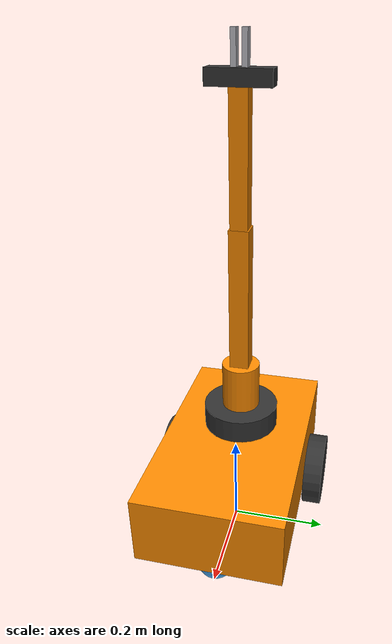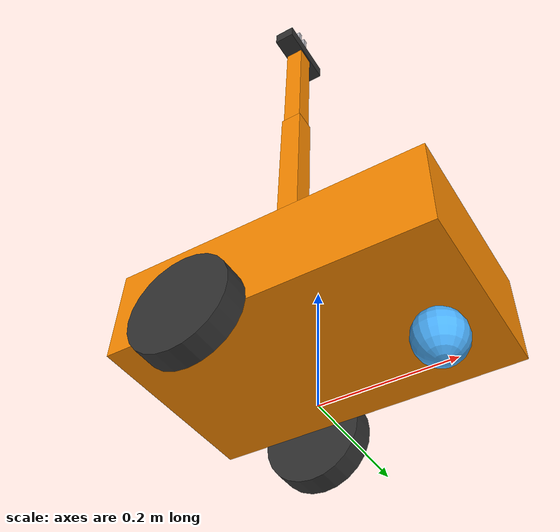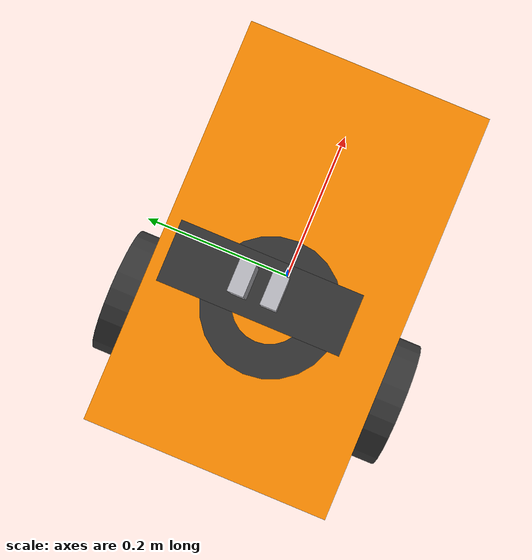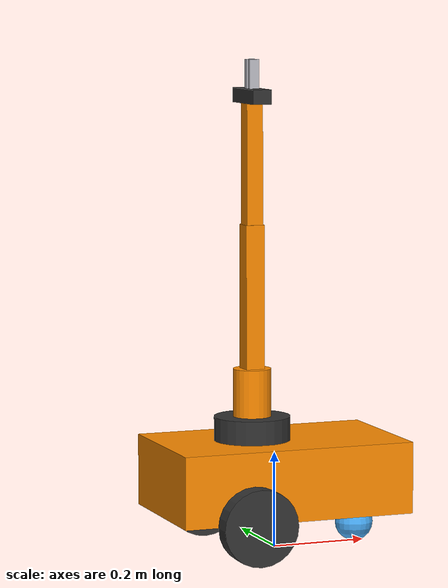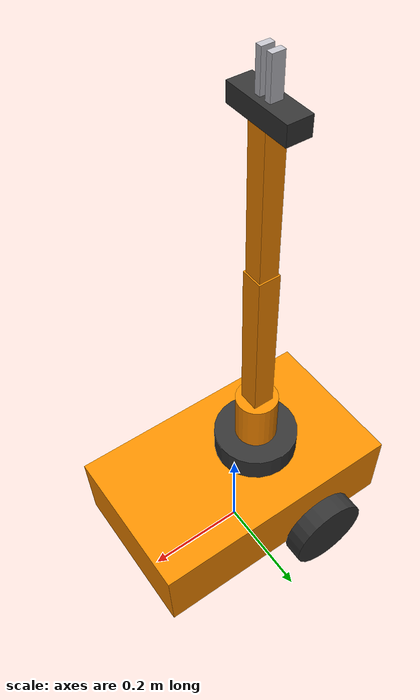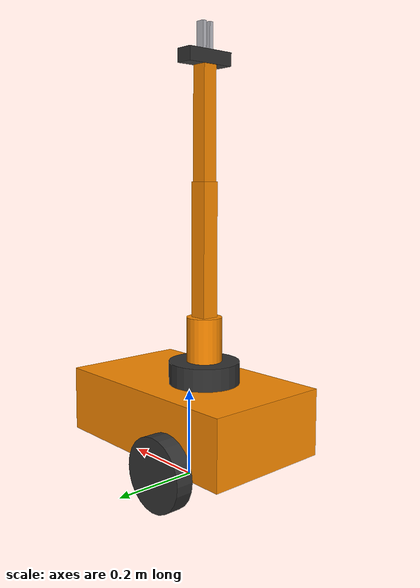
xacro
<?xml version="1.0"?>
<!-- Hybrid robot 1: Chiku's wheeled base + the 3-DOF arm macro (reused with xacro:include) -->
<robot name="mobile_manipulator" xmlns:xacro="http://www.ros.org/wiki/xacro">
  <xacro:arg name="use_lidar" default="false"/>
  <xacro:include filename="../../common/urdf/macros.xacro"/>
  <xacro:include filename="../../common/urdf/arm3_macro.xacro"/>
  <xacro:property name="base_l" value="0.5"/>
  <xacro:property name="base_w" value="0.3"/>
  <xacro:property name="base_h" value="0.15"/>
  <xacro:property name="wheel_r" value="0.08"/>
  <xacro:property name="wheel_len" value="0.04"/>
  <xacro:property name="caster_r" value="${wheel_r/2}"/>

  <link name="base_footprint"/>
  <link name="base_link">
    <visual><origin xyz="0 0 ${base_h/2}"/><geometry><box size="${base_l} ${base_w} ${base_h}"/></geometry><material name="orange"/></visual>
    <collision><origin xyz="0 0 ${base_h/2}"/><geometry><box size="${base_l} ${base_w} ${base_h}"/></geometry></collision>
    <xacro:box_inertia m="4.0" x="${base_l}" y="${base_w}" z="${base_h}" xyz="0 0 ${base_h/2}"/>
  </link>
  <joint name="base_joint" type="fixed">
    <parent link="base_footprint"/><child link="base_link"/><origin xyz="0 0 ${wheel_r}"/>
  </joint>

  <xacro:macro name="wheel" params="side y_sign">
    <link name="${side}_wheel_link">
      <visual><origin rpy="${pi/2} 0 0"/><geometry><cylinder radius="${wheel_r}" length="${wheel_len}"/></geometry><material name="dark_grey"/></visual>
      <collision><origin rpy="${pi/2} 0 0"/><geometry><cylinder radius="${wheel_r}" length="${wheel_len}"/></geometry></collision>
      <xacro:cylinder_inertia m="0.4" r="${wheel_r}" h="${wheel_len}" rpy="${pi/2} 0 0"/>
    </link>
    <joint name="${side}_wheel_joint" type="continuous">
      <parent link="base_link"/><child link="${side}_wheel_link"/>
      <origin xyz="-0.1 ${y_sign*(base_w/2 + wheel_len/2)} 0"/><axis xyz="0 1 0"/>
    </joint>
  </xacro:macro>
  <xacro:wheel side="left" y_sign="1"/>
  <xacro:wheel side="right" y_sign="-1"/>

  <link name="caster_link">
    <visual><geometry><sphere radius="${caster_r}"/></geometry><material name="sky_blue"/></visual>
    <collision><geometry><sphere radius="${caster_r}"/></geometry></collision>
    <xacro:sphere_inertia m="0.1" r="${caster_r}"/>
  </link>
  <joint name="caster_joint" type="fixed">
    <parent link="base_link"/><child link="caster_link"/><origin xyz="0.18 0 ${caster_r - wheel_r}"/>
  </joint>
  <xacro:if value="$(arg use_lidar)">
    <link name="lidar_link">
      <visual><geometry><cylinder radius="0.04" length="0.04"/></geometry><material name="dark_grey"/></visual>
      <collision><geometry><cylinder radius="0.04" length="0.04"/></geometry></collision>
      <xacro:cylinder_inertia m="0.1" r="0.04" h="0.04"/>
    </link>
    <joint name="lidar_joint" type="fixed">
      <parent link="base_link"/><child link="lidar_link"/><origin xyz="0.1 0 ${base_h + 0.02}"/>
    </joint>
  </xacro:if>
  <xacro:arm3 prefix="arm_" parent="base_link" xyz="-0.05 0 ${base_h}"/>
</robot>

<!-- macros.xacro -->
<!-- Shared materials and inertia macros (solid box, cylinder along Z, sphere) -->
<robot xmlns:xacro="http://www.ros.org/wiki/xacro">
  <material name="orange"><color rgba="1.0 0.55 0.0 1.0"/></material>
  <material name="dark_grey"><color rgba="0.2 0.2 0.2 1.0"/></material>
  <material name="light_grey"><color rgba="0.75 0.75 0.78 1.0"/></material>
  <material name="sky_blue"><color rgba="0.3 0.7 1.0 1.0"/></material>
  <material name="green"><color rgba="0.2 0.75 0.35 1.0"/></material>
  <material name="red"><color rgba="0.9 0.2 0.2 1.0"/></material>
  <material name="white"><color rgba="0.95 0.95 0.95 1.0"/></material>
  <material name="prop_blue"><color rgba="0.3 0.6 1.0 0.6"/></material>

  <xacro:macro name="box_inertia" params="m x y z xyz:='0 0 0' rpy:='0 0 0'">
    <inertial>
      <origin xyz="${xyz}" rpy="${rpy}"/>
      <mass value="${m}"/>
      <inertia ixx="${m*(y*y+z*z)/12}" ixy="0" ixz="0" iyy="${m*(x*x+z*z)/12}" iyz="0" izz="${m*(x*x+y*y)/12}"/>
    </inertial>
  </xacro:macro>
  <xacro:macro name="cylinder_inertia" params="m r h xyz:='0 0 0' rpy:='0 0 0'">
    <inertial>
      <origin xyz="${xyz}" rpy="${rpy}"/>
      <mass value="${m}"/>
      <inertia ixx="${m*(3*r*r+h*h)/12}" ixy="0" ixz="0" iyy="${m*(3*r*r+h*h)/12}" iyz="0" izz="${m*r*r/2}"/>
    </inertial>
  </xacro:macro>
  <xacro:macro name="sphere_inertia" params="m r xyz:='0 0 0'">
    <inertial>
      <origin xyz="${xyz}"/>
      <mass value="${m}"/>
      <inertia ixx="${2*m*r*r/5}" ixy="0" ixz="0" iyy="${2*m*r*r/5}" iyz="0" izz="${2*m*r*r/5}"/>
    </inertial>
  </xacro:macro>
</robot>

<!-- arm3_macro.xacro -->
<!-- A 3-DOF arm (yaw, shoulder, elbow) with a 2-finger gripper. The right finger MIMICS the left one. -->
<robot xmlns:xacro="http://www.ros.org/wiki/xacro">
  <xacro:macro name="arm3" params="prefix parent xyz:='0 0 0'">
    <joint name="${prefix}mount_joint" type="fixed">
      <parent link="${parent}"/><child link="${prefix}arm_base_link"/><origin xyz="${xyz}"/>
    </joint>
    <link name="${prefix}arm_base_link">
      <visual><origin xyz="0 0 0.025"/><geometry><cylinder radius="0.08" length="0.05"/></geometry><material name="dark_grey"/></visual>
      <collision><origin xyz="0 0 0.025"/><geometry><cylinder radius="0.08" length="0.05"/></geometry></collision>
      <xacro:cylinder_inertia m="1.0" r="0.08" h="0.05" xyz="0 0 0.025"/>
    </link>
    <joint name="${prefix}base_yaw_joint" type="revolute">
      <parent link="${prefix}arm_base_link"/><child link="${prefix}turret_link"/>
      <origin xyz="0 0 0.05"/><axis xyz="0 0 1"/><limit lower="-3.14" upper="3.14" effort="10" velocity="1.0"/>
    </joint>
    <link name="${prefix}turret_link">
      <visual><origin xyz="0 0 0.05"/><geometry><cylinder radius="0.04" length="0.10"/></geometry><material name="orange"/></visual>
      <collision><origin xyz="0 0 0.05"/><geometry><cylinder radius="0.04" length="0.10"/></geometry></collision>
      <xacro:cylinder_inertia m="0.3" r="0.04" h="0.10" xyz="0 0 0.05"/>
    </link>
    <joint name="${prefix}shoulder_joint" type="revolute">
      <parent link="${prefix}turret_link"/><child link="${prefix}upper_arm_link"/>
      <origin xyz="0 0 0.10"/><axis xyz="0 1 0"/><limit lower="-1.57" upper="1.57" effort="10" velocity="1.0"/>
    </joint>
    <link name="${prefix}upper_arm_link">
      <visual><origin xyz="0 0 0.15"/><geometry><box size="0.04 0.04 0.30"/></geometry><material name="orange"/></visual>
      <collision><origin xyz="0 0 0.15"/><geometry><box size="0.04 0.04 0.30"/></geometry></collision>
      <xacro:box_inertia m="0.4" x="0.04" y="0.04" z="0.30" xyz="0 0 0.15"/>
    </link>
    <joint name="${prefix}elbow_joint" type="revolute">
      <parent link="${prefix}upper_arm_link"/><child link="${prefix}forearm_link"/>
      <origin xyz="0 0 0.30"/><axis xyz="0 1 0"/><limit lower="-2.0" upper="2.0" effort="8" velocity="1.0"/>
    </joint>
    <link name="${prefix}forearm_link">
      <visual><origin xyz="0 0 0.125"/><geometry><box size="0.035 0.035 0.25"/></geometry><material name="orange"/></visual>
      <collision><origin xyz="0 0 0.125"/><geometry><box size="0.035 0.035 0.25"/></geometry></collision>
      <xacro:box_inertia m="0.3" x="0.035" y="0.035" z="0.25" xyz="0 0 0.125"/>
    </link>
    <joint name="${prefix}gripper_mount_joint" type="fixed">
      <parent link="${prefix}forearm_link"/><child link="${prefix}gripper_base_link"/><origin xyz="0 0 0.25"/>
    </joint>
    <link name="${prefix}gripper_base_link">
      <visual><origin xyz="0 0 0.015"/><geometry><box size="0.04 0.12 0.03"/></geometry><material name="dark_grey"/></visual>
      <collision><origin xyz="0 0 0.015"/><geometry><box size="0.04 0.12 0.03"/></geometry></collision>
      <xacro:box_inertia m="0.1" x="0.04" y="0.12" z="0.03" xyz="0 0 0.015"/>
    </link>
    <xacro:macro name="finger" params="side sign">
      <joint name="${prefix}${side}_finger_joint" type="prismatic">
        <parent link="${prefix}gripper_base_link"/><child link="${prefix}${side}_finger_link"/>
        <origin xyz="0 ${sign*0.01} 0.03"/><axis xyz="0 ${sign} 0"/><limit lower="0" upper="0.04" effort="5" velocity="0.05"/>
        <xacro:if value="${sign &lt; 0}"><mimic joint="${prefix}left_finger_joint" multiplier="1" offset="0"/></xacro:if>
      </joint>
      <link name="${prefix}${side}_finger_link">
        <visual><origin xyz="0 0 0.03"/><geometry><box size="0.02 0.01 0.06"/></geometry><material name="light_grey"/></visual>
        <collision><origin xyz="0 0 0.03"/><geometry><box size="0.02 0.01 0.06"/></geometry></collision>
        <xacro:box_inertia m="0.02" x="0.02" y="0.01" z="0.06" xyz="0 0 0.03"/>
      </link>
    </xacro:macro>
    <xacro:finger side="left" sign="1"/>
    <xacro:finger side="right" sign="-1"/>
  </xacro:macro>
</robot>
